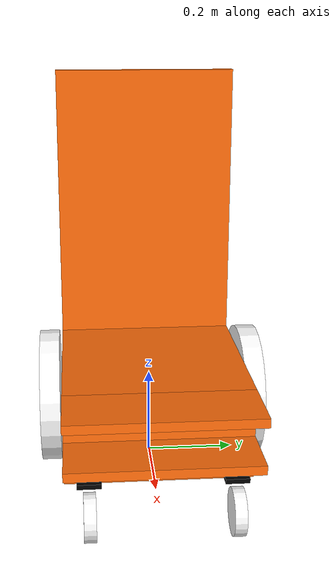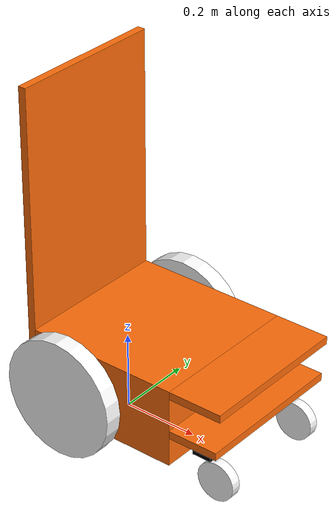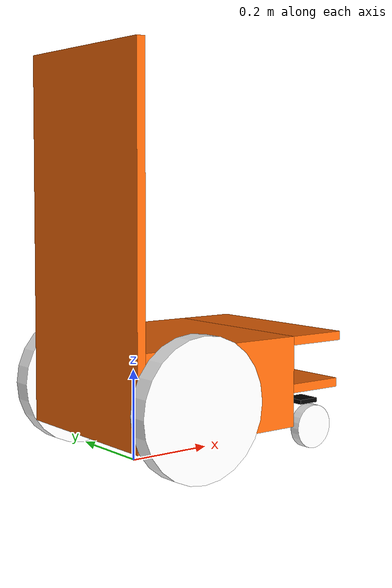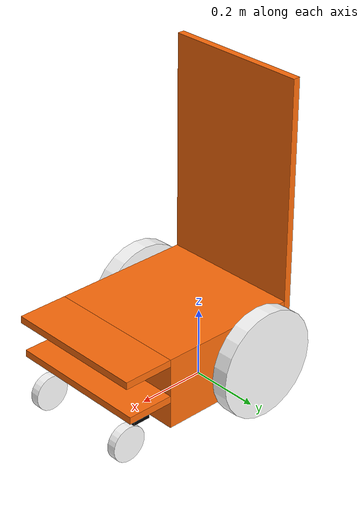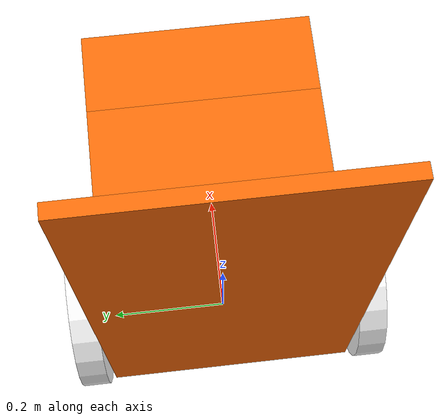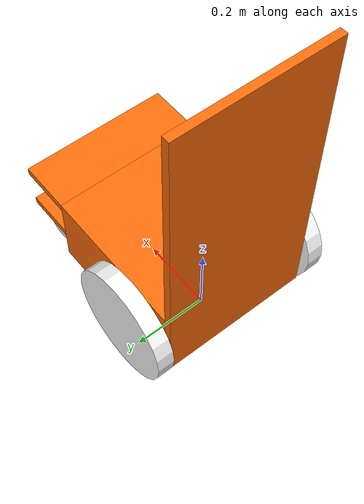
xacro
<?xml version="1.0"?>
<robot xmlns:xacro="http://www.ros.org/wiki/xacro" name="orne_box">

  <!-- 定数の定義 -->
  <xacro:property name="PI" value="3.1415926535897931"/>

  <!-- 外部ファイルの読み込み -->
  <xacro:include filename="$(find simulator)/urdf/material_colors.xacro"/>

  <!-- リンク定義 -->
  <xacro:include filename="$(find simulator)/urdf/links/base_link.urdf.xacro"/>
  <xacro:include filename="$(find simulator)/urdf/links/caster_wheel_link.urdf.xacro"/>
  <xacro:include filename="$(find simulator)/urdf/links/caster_swivel_link.urdf.xacro"/>
  <xacro:include filename="$(find simulator)/urdf/links/wheel_link.urdf.xacro"/>

  <!-- ジョイント定義 -->
  <xacro:include filename="$(find simulator)/urdf/joints/caster_wheel_joint.urdf.xacro"/>
  <xacro:include filename="$(find simulator)/urdf/joints/caster_swivel_joint.urdf.xacro"/>
  <xacro:include filename="$(find simulator)/urdf/joints/wheel_joint.urdf.xacro"/>

  <!-- ベースリンクの定義 -->
  <xacro:base_link/>

  <!-- キャスタ（左右） -->
  <xacro:caster_wheel_link prefix="left"/>
  <xacro:caster_swivel_link prefix="left"/>
  <xacro:caster_wheel_joint prefix="left"/>
  <xacro:caster_swivel_joint prefix="left" parent="base_link">
    <origin xyz="0.362 0.150 0.115" rpy="0 0 0"/>
  </xacro:caster_swivel_joint>

  <xacro:caster_wheel_link prefix="right"/>
  <xacro:caster_swivel_link prefix="right"/>
  <xacro:caster_wheel_joint prefix="right"/>
  <xacro:caster_swivel_joint prefix="right" parent="base_link">
    <origin xyz="0.362 -0.150 0.115" rpy="0 0 0"/>
  </xacro:caster_swivel_joint>

  <!-- 車輪（左右） -->
  <!-- 左車輪 -->
  <xacro:wheel_joint prefix="left" parent="base_link">
    <origin xyz="0.0 0.23075 0.152" rpy="${-PI/2} 0 0"/>
    <axis xyz="0 0 1"/>
  </xacro:wheel_joint>
  <xacro:wheel_link prefix="left" width="0.045" radius="0.152">
    <origin xyz="0.0 0.0 0.0" rpy="0 0 0"/>
  </xacro:wheel_link>

  <!-- 右車輪 -->
  <xacro:wheel_joint prefix="right" parent="base_link">
    <origin xyz="0.0 -0.23075 0.152" rpy="${-PI/2} 0 0"/>
    <axis xyz="0 0 1"/>
  </xacro:wheel_joint>
  <xacro:wheel_link prefix="right" width="0.045" radius="0.152">
    <origin xyz="0.0 0.0 0.0" rpy="0 0 0"/>
  </xacro:wheel_link>

</robot>

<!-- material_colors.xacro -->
<robot xmlns:xacro="http://www.ros.org/wiki/xacro">

  <!-- 色の定義 -->
  <material name="black">
    <color rgba="0.0 0.0 0.0 1.0"/>
  </material>

  <material name="brown">
    <color rgba="0.8706 0.8118 0.7647 1.0"/>
  </material>

  <material name="red">
    <color rgba="0.8 0.0 0.0 1.0"/>
  </material>

  <material name="orange">
    <color rgba="1.0 0.4235 0.0392 1.0"/>
  </material>

  <material name="yellow">
    <color rgba="0.8 0.8 0.0 1.0"/>
  </material>

  <material name="green">
    <color rgba="0.0 0.8 0.0 1.0"/>
  </material>

  <material name="cyan">
    <color rgba="0.0 0.8 0.8 1.0"/>
  </material>

  <material name="blue">
    <color rgba="0.0 0.0 0.8 1.0"/>
  </material>

  <material name="purple">
    <color rgba="0.8 0.0 0.8 1.0"/>
  </material>

  <material name="gray">
    <color rgba="0.5 0.5 0.5 1.0"/>
  </material>

  <material name="white">
    <color rgba="1.0 1.0 1.0 1.0"/>
  </material>
</robot>

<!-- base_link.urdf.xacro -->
<robot xmlns:xacro="http://www.ros.org/wiki/xacro">

  <!-- base_link マクロ定義 -->
  <xacro:macro name="base_link">

    <!-- base_footprint 定義（地面基準） -->
    <link name="base_footprint"/>
    <joint name="base_joint" type="fixed">
      <origin xyz="0.0 0.0 0.0"/>
      <parent link="base_footprint"/>
      <child link="base_link"/>
    </joint>

    <!-- base_link 本体 -->
    <link name="base_link">

      <!-- 可視化部 -->
      <visual>
        <origin xyz="0.090 0 0.1715" rpy="0 0 0"/>
        <geometry>
          <box size="0.400 0.404 0.202"/>
        </geometry>
        <material name="orange">
          <color rgba="1.0 0.4235 0.0392 1.0"/>
        </material>
      </visual>

      <visual>
        <origin xyz="0.36125 0 0.2625" rpy="0 0 0"/>
        <geometry>
          <box size="0.1425 0.404 0.020"/>
        </geometry>
        <material name="orange">
          <color rgba="1.0 0.4235 0.0392 1.0"/>
        </material>
      </visual>

      <visual>
        <origin xyz="0.35625 0 0.156" rpy="0 0 0"/>
        <geometry>
          <box size="0.1325 0.404 0.020"/>
        </geometry>
        <material name="orange">
          <color rgba="1.0 0.4235 0.0392 1.0"/>
        </material>
      </visual>

      <visual>
        <origin xyz="-0.120 0 0.4815" rpy="0 0 0"/>
        <geometry>
          <box size="0.020 0.404 0.822"/>
        </geometry>
        <material name="orange">
          <color rgba="1.0 0.4235 0.0392 1.0"/>
        </material>
      </visual>

      <!-- 衝突判定部（collision） -->
      <collision>
        <origin xyz="0.090 0 0.1715" rpy="0 0 0"/>
        <geometry>
          <box size="0.400 0.404 0.202"/>
        </geometry>
      </collision>

      <collision>
        <origin xyz="0.36125 0 0.2625" rpy="0 0 0"/>
        <geometry>
          <box size="0.1425 0.404 0.020"/>
        </geometry>
      </collision>

      <collision>
        <origin xyz="0.35625 0 0.156" rpy="0 0 0"/>
        <geometry>
          <box size="0.1325 0.404 0.020"/>
        </geometry>
      </collision>

      <collision>
        <origin xyz="-0.120 0 0.4815" rpy="0 0 0"/>
        <geometry>
          <box size="0.020 0.404 0.822"/>
        </geometry>
      </collision>

      <!-- 慣性パラメータ -->
      <inertial>
        <origin xyz="0.090 0 0.1715" rpy="0 0 0"/>
        <mass value="25.0"/>
        <inertia ixx="1.12" ixy="0.0" ixz="0.0"
                 iyy="3.46" iyz="0.0" izz="3.9"/>
      </inertial>
    </link>
  </xacro:macro>

</robot>

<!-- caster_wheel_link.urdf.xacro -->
<robot xmlns:xacro="http://www.ros.org/wiki/xacro">

  <!-- キャスターの車輪リンク定義 -->
  <xacro:macro name="caster_wheel_link" params="prefix">

    <link name="${prefix}_caster_wheel_link">

      <!-- 視覚表現 -->
      <visual>
        <origin xyz="0 0 0" rpy="0 0 0"/>
        <geometry>
          <cylinder length="0.025" radius="0.050"/>
        </geometry>
        <material name="white"/>
      </visual>

      <!-- 衝突判定 -->
      <collision>
        <origin xyz="0 0 0" rpy="0 0 0"/>
        <geometry>
          <cylinder length="0.025" radius="0.050"/>
        </geometry>
      </collision>

      <!-- 慣性パラメータ -->
      <inertial>
        <origin xyz="0 0 0"/>
        <mass value="0.2"/>
        <inertia
          ixx="0.001" ixy="0.0" ixz="0.0"
          iyy="0.001" iyz="0.0" izz="0.001"/>
      </inertial>

    </link>

  </xacro:macro>

</robot>

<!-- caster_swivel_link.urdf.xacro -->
<robot xmlns:xacro="http://www.ros.org/wiki/xacro">

  <!-- キャスターの旋回軸リンク定義 -->
  <xacro:macro name="caster_swivel_link" params="prefix">

    <link name="${prefix}_caster_swivel_link">

      <!-- 視覚表現 -->
      <visual>
        <origin xyz="0 0 0" rpy="0 0 0"/>
        <geometry>
          <box size="0.05 0.05 0.01"/>
        </geometry>
        <material name="black"/>
      </visual>

      <!-- 衝突判定 -->
      <collision>
        <origin xyz="0 0 0" rpy="0 0 0"/>
        <geometry>
          <box size="0.05 0.05 0.01"/>
        </geometry>
      </collision>

      <!-- 慣性パラメータ -->
      <inertial>
        <origin xyz="0 0 0"/>
        <mass value="0.1"/>
        <inertia
          ixx="0.001" ixy="0.0" ixz="0.0"
          iyy="0.001" iyz="0.0" izz="0.001"/>
      </inertial>

    </link>

  </xacro:macro>

</robot>

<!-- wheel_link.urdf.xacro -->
<robot xmlns:xacro="http://www.ros.org/wiki/xacro">

  <!-- 駆動輪リンクの定義マクロ -->
  <xacro:macro name="wheel_link" params="prefix *origin width radius">

    <link name="${prefix}_wheel_link">

      <!-- 視覚表現 -->
      <visual>
        <xacro:insert_block name="origin"/>
        <geometry>
          <cylinder length="${width}" radius="${radius}"/>
        </geometry>
        <material name="white"/>
      </visual>

      <!-- 衝突判定 -->
      <collision>
        <xacro:insert_block name="origin"/>
        <geometry>
          <cylinder length="${width}" radius="${radius}"/>
        </geometry>
      </collision>

      <!-- 慣性パラメータ -->
      <inertial>
        <origin xyz="0 0 0"/>
        <mass value="0.15"/>
        <inertia
          ixx="0.005" ixy="0.0" ixz="0.0"
          iyy="0.005" iyz="0.0" izz="0.01"/>
      </inertial>

    </link>

  </xacro:macro>

</robot>

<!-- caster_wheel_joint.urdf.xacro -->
<robot xmlns:xacro="http://www.ros.org/wiki/xacro">

  <!-- キャスターのホイールジョイントマクロ -->
  <xacro:macro name="caster_wheel_joint" params="prefix">
    <joint name="${prefix}_caster_wheel_joint" type="continuous">
      <parent link="${prefix}_caster_swivel_link"/>
      <child link="${prefix}_caster_wheel_link"/>
      <origin xyz="0.03 0.0 -0.065" rpy="${-PI/2} 0 0"/>
      <axis xyz="0 0 1"/>
      <limit effort="0.0" velocity="0.0" lower="${-1e15}" upper="${1e15}"/>
      <dynamics damping="0.01"/>
    </joint>
  </xacro:macro>

</robot>

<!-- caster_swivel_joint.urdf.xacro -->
<robot xmlns:xacro="http://www.ros.org/wiki/xacro">

  <!-- キャスター旋回ジョイントマクロ -->
  <xacro:macro name="caster_swivel_joint" params="prefix parent *origin">
    <joint name="${prefix}_caster_swivel_joint" type="continuous">
      <parent link="${parent}"/>
      <child link="${prefix}_caster_swivel_link"/>
      <xacro:insert_block name="origin"/>
      <axis xyz="0 0 1"/>
      <limit effort="0.0" velocity="0.0" lower="${-1e15}" upper="${1e15}"/>
      <dynamics damping="0.01"/>
    </joint>
  </xacro:macro>

</robot>

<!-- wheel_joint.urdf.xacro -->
<robot xmlns:xacro="http://www.ros.org/wiki/xacro">

  <!-- 駆動輪ジョイント＋トランスミッション定義マクロ -->
  <xacro:macro name="wheel_joint" params="prefix parent *origin *axis">
    <!-- ジョイント定義 -->
    <joint name="${prefix}_wheel_joint" type="continuous">
      <parent link="${parent}"/>
      <child link="${prefix}_wheel_link"/>
      <xacro:insert_block name="origin"/>
      <xacro:insert_block name="axis"/>
      <limit effort="10.5" velocity="10.0" lower="${-1e15}" upper="${1e15}"/>
      <dynamics damping="0.05"/>
    </joint>

    <!-- トランスミッション定義 -->
    <transmission name="${prefix}_wheel_transmission">
      <type>transmission_interface/SimpleTransmission</type>

      <joint name="${prefix}_wheel_joint">
        <hardwareInterface>hardware_interface/VelocityJointInterface</hardwareInterface>
      </joint>

      <actuator name="${prefix}_motor">
        <hardwareInterface>hardware_interface/VelocityJointInterface</hardwareInterface>
        <mechanicalReduction>1</mechanicalReduction>
      </actuator>
    </transmission>
  </xacro:macro>

</robot>
